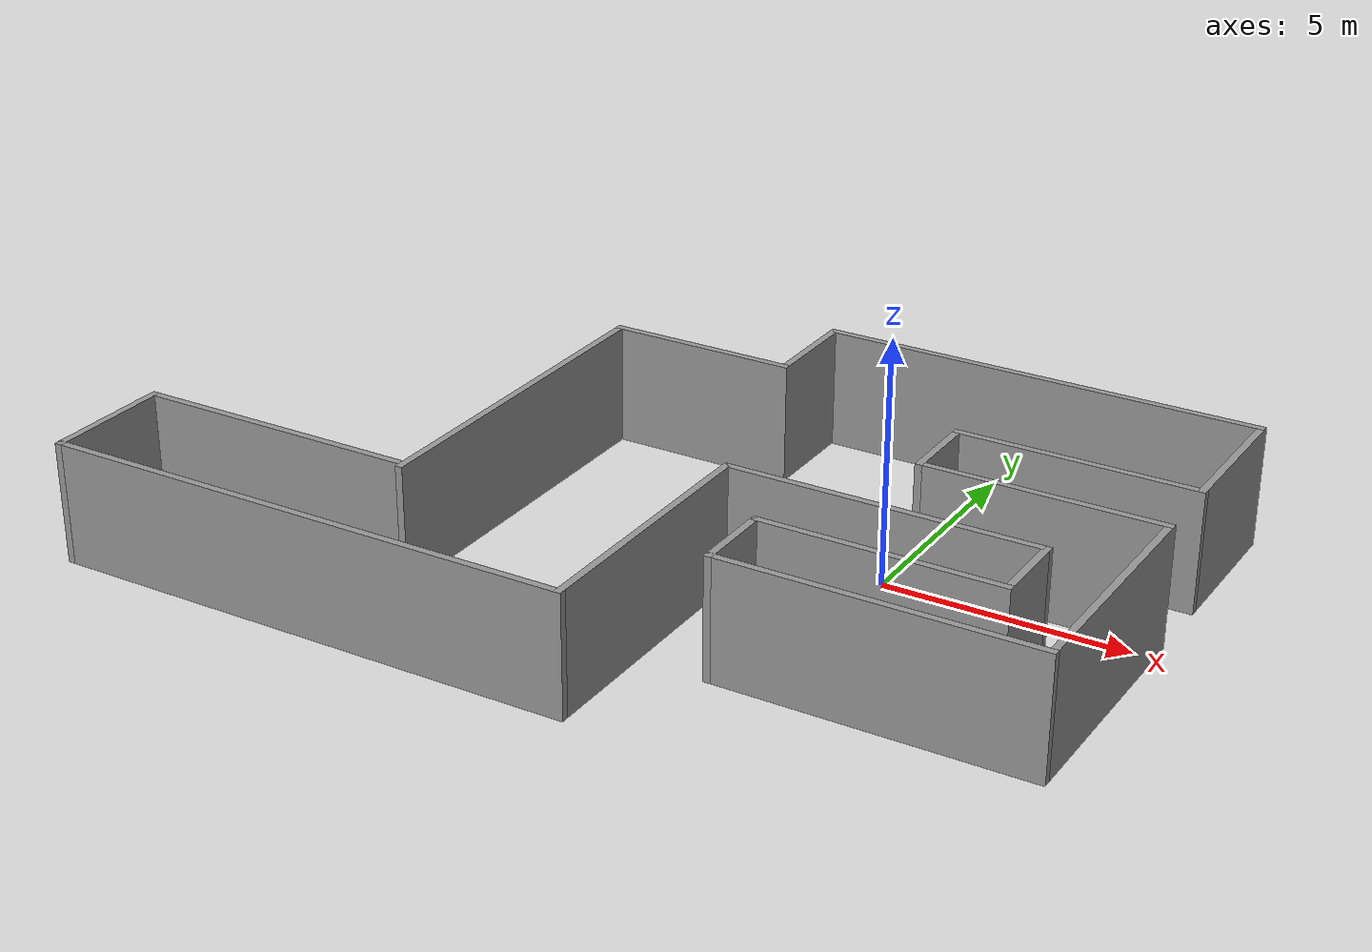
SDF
<?xml version='1.0'?>
<sdf version='1.7'>
  <model name='room_1'>
    <pose>-4.14546 -1.03137 0 0 -0 0</pose>
    <link name='Wall_10'>
      <collision name='Wall_10_Collision'>
        <geometry>
          <box>
            <size>5 0.15 2.5</size>
          </box>
        </geometry>
        <pose>0 0 1.25 0 -0 0</pose>
      </collision>
      <visual name='Wall_10_Visual'>
        <pose>0 0 1.25 0 -0 0</pose>
        <geometry>
          <box>
            <size>5 0.15 2.5</size>
          </box>
        </geometry>
        <material>
          <script>
            <uri>file://media/materials/scripts/gazebo.material</uri>
            <name>Gazebo/Grey</name>
          </script>
          <ambient>1 1 1 1</ambient>
        </material>
        <meta>
          <layer>0</layer>
        </meta>
      </visual>
      <pose>7.05 1.4 0 0 -0 0</pose>
    </link>
    <link name='Wall_11'>
      <collision name='Wall_11_Collision'>
        <geometry>
          <box>
            <size>5.25 0.15 2.5</size>
          </box>
        </geometry>
        <pose>0 0 1.25 0 -0 0</pose>
      </collision>
      <visual name='Wall_11_Visual'>
        <pose>0 0 1.25 0 -0 0</pose>
        <geometry>
          <box>
            <size>5.25 0.15 2.5</size>
          </box>
        </geometry>
        <material>
          <script>
            <uri>file://media/materials/scripts/gazebo.material</uri>
            <name>Gazebo/Grey</name>
          </script>
          <ambient>1 1 1 1</ambient>
        </material>
        <meta>
          <layer>0</layer>
        </meta>
      </visual>
      <pose>9.475 -1.15 0 0 -0 -1.5708</pose>
    </link>
    <link name='Wall_12'>
      <collision name='Wall_12_Collision'>
        <geometry>
          <box>
            <size>6.5 0.15 2.5</size>
          </box>
        </geometry>
        <pose>0 0 1.25 0 -0 0</pose>
      </collision>
      <visual name='Wall_12_Visual'>
        <pose>0 0 1.25 0 -0 0</pose>
        <geometry>
          <box>
            <size>6.5 0.15 2.5</size>
          </box>
        </geometry>
        <material>
          <script>
            <uri>file://media/materials/scripts/gazebo.material</uri>
            <name>Gazebo/Grey</name>
          </script>
          <ambient>1 1 1 1</ambient>
        </material>
        <meta>
          <layer>0</layer>
        </meta>
      </visual>
      <pose>6.3 -3.7 0 0 -0 3.14159</pose>
    </link>
    <link name='Wall_13'>
      <collision name='Wall_13_Collision'>
        <geometry>
          <box>
            <size>1.75 0.15 2.5</size>
          </box>
        </geometry>
        <pose>0 0 1.25 0 -0 0</pose>
      </collision>
      <visual name='Wall_13_Visual'>
        <pose>0 0 1.25 0 -0 0</pose>
        <geometry>
          <box>
            <size>1.75 0.15 2.5</size>
          </box>
        </geometry>
        <material>
          <script>
            <uri>file://media/materials/scripts/gazebo.material</uri>
            <name>Gazebo/Grey</name>
          </script>
          <ambient>1 1 1 1</ambient>
        </material>
        <meta>
          <layer>0</layer>
        </meta>
      </visual>
      <pose>3.125 -2.9 0 0 -0 1.5708</pose>
    </link>
    <link name='Wall_14'>
      <collision name='Wall_14_Collision'>
        <geometry>
          <box>
            <size>5 0.15 2.5</size>
          </box>
        </geometry>
        <pose>0 0 1.25 0 -0 0</pose>
      </collision>
      <visual name='Wall_14_Visual'>
        <pose>0 0 1.25 0 -0 0</pose>
        <geometry>
          <box>
            <size>5 0.15 2.5</size>
          </box>
        </geometry>
        <material>
          <script>
            <uri>file://media/materials/scripts/gazebo.material</uri>
            <name>Gazebo/Grey</name>
          </script>
          <ambient>1 1 1 1</ambient>
        </material>
        <meta>
          <layer>0</layer>
        </meta>
      </visual>
      <pose>5.55 -2.1 0 0 -0 0</pose>
    </link>
    <link name='Wall_15'>
      <collision name='Wall_15_Collision'>
        <geometry>
          <box>
            <size>1.75 0.15 2.5</size>
          </box>
        </geometry>
        <pose>0 0 1.25 0 -0 0</pose>
      </collision>
      <visual name='Wall_15_Visual'>
        <pose>0 0 1.25 0 -0 0</pose>
        <geometry>
          <box>
            <size>1.75 0.15 2.5</size>
          </box>
        </geometry>
        <material>
          <script>
            <uri>file://media/materials/scripts/gazebo.material</uri>
            <name>Gazebo/Grey</name>
          </script>
          <ambient>1 1 1 1</ambient>
        </material>
        <meta>
          <layer>0</layer>
        </meta>
      </visual>
      <pose>7.975 -1.3 0 0 -0 1.5708</pose>
    </link>
    <link name='Wall_16'>
      <collision name='Wall_16_Collision'>
        <geometry>
          <box>
            <size>6.5 0.15 2.5</size>
          </box>
        </geometry>
        <pose>0 0 1.25 0 -0 0</pose>
      </collision>
      <visual name='Wall_16_Visual'>
        <pose>0 0 1.25 0 -0 0</pose>
        <geometry>
          <box>
            <size>6.5 0.15 2.5</size>
          </box>
        </geometry>
        <material>
          <script>
            <uri>file://media/materials/scripts/gazebo.material</uri>
            <name>Gazebo/Grey</name>
          </script>
          <ambient>1 1 1 1</ambient>
        </material>
        <meta>
          <layer>0</layer>
        </meta>
      </visual>
      <pose>4.8 -0.5 0 0 -0 3.14159</pose>
    </link>
    <link name='Wall_17'>
      <collision name='Wall_17_Collision'>
        <geometry>
          <box>
            <size>5.75 0.15 2.5</size>
          </box>
        </geometry>
        <pose>0 0 1.25 0 -0 0</pose>
      </collision>
      <visual name='Wall_17_Visual'>
        <pose>0 0 1.25 0 -0 0</pose>
        <geometry>
          <box>
            <size>5.75 0.15 2.5</size>
          </box>
        </geometry>
        <material>
          <script>
            <uri>file://media/materials/scripts/gazebo.material</uri>
            <name>Gazebo/Grey</name>
          </script>
          <ambient>1 1 1 1</ambient>
        </material>
        <meta>
          <layer>0</layer>
        </meta>
      </visual>
      <pose>1.625 -3.3 0 0 -0 -1.5708</pose>
    </link>
    <link name='Wall_18'>
      <collision name='Wall_18_Collision'>
        <geometry>
          <box>
            <size>11.25 0.15 2.5</size>
          </box>
        </geometry>
        <pose>0 0 1.25 0 -0 0</pose>
      </collision>
      <visual name='Wall_18_Visual'>
        <pose>0 0 1.25 0 -0 0</pose>
        <geometry>
          <box>
            <size>11.25 0.15 2.5</size>
          </box>
        </geometry>
        <material>
          <script>
            <uri>file://media/materials/scripts/gazebo.material</uri>
            <name>Gazebo/Grey</name>
          </script>
          <ambient>1 1 1 1</ambient>
        </material>
        <meta>
          <layer>0</layer>
        </meta>
      </visual>
      <pose>-3.925 -6.1 0 0 -0 3.14159</pose>
    </link>
    <link name='Wall_19'>
      <collision name='Wall_19_Collision'>
        <geometry>
          <box>
            <size>2.75 0.15 2.5</size>
          </box>
        </geometry>
        <pose>0 0 1.25 0 -0 0</pose>
      </collision>
      <visual name='Wall_19_Visual'>
        <pose>0 0 1.25 0 -0 0</pose>
        <geometry>
          <box>
            <size>2.75 0.15 2.5</size>
          </box>
        </geometry>
        <material>
          <script>
            <uri>file://media/materials/scripts/gazebo.material</uri>
            <name>Gazebo/Grey</name>
          </script>
          <ambient>1 1 1 1</ambient>
        </material>
        <meta>
          <layer>0</layer>
        </meta>
      </visual>
      <pose>-9.475 -4.8 0 0 -0 1.5708</pose>
    </link>
    <link name='Wall_20'>
      <collision name='Wall_20_Collision'>
        <geometry>
          <box>
            <size>6 0.15 2.5</size>
          </box>
        </geometry>
        <pose>0 0 1.25 0 -0 0</pose>
      </collision>
      <visual name='Wall_20_Visual'>
        <pose>0 0 1.25 0 -0 0</pose>
        <geometry>
          <box>
            <size>6 0.15 2.5</size>
          </box>
        </geometry>
        <material>
          <script>
            <uri>file://media/materials/scripts/gazebo.material</uri>
            <name>Gazebo/Grey</name>
          </script>
          <ambient>1 1 1 1</ambient>
        </material>
        <meta>
          <layer>0</layer>
        </meta>
      </visual>
      <pose>-6.55 -3.5 0 0 -0 0</pose>
    </link>
    <link name='Wall_3'>
      <collision name='Wall_3_Collision'>
        <geometry>
          <box>
            <size>7.75 0.15 2.5</size>
          </box>
        </geometry>
        <pose>0 0 1.25 0 -0 0</pose>
      </collision>
      <visual name='Wall_3_Visual'>
        <pose>0 0 1.25 0 -0 0</pose>
        <geometry>
          <box>
            <size>7.75 0.15 2.5</size>
          </box>
        </geometry>
        <material>
          <script>
            <uri>file://media/materials/scripts/gazebo.material</uri>
            <name>Gazebo/Grey</name>
          </script>
          <ambient>1 1 1 1</ambient>
        </material>
        <meta>
          <layer>0</layer>
        </meta>
      </visual>
      <pose>-3.475 0.2 0 0 -0 1.5708</pose>
    </link>
    <link name='Wall_4'>
      <collision name='Wall_4_Collision'>
        <geometry>
          <box>
            <size>4 0.15 2.5</size>
          </box>
        </geometry>
        <pose>0 0 1.25 0 -0 0</pose>
      </collision>
      <visual name='Wall_4_Visual'>
        <pose>0 0 1.25 0 -0 0</pose>
        <geometry>
          <box>
            <size>4 0.15 2.5</size>
          </box>
        </geometry>
        <material>
          <script>
            <uri>file://media/materials/scripts/gazebo.material</uri>
            <name>Gazebo/Grey</name>
          </script>
          <ambient>1 1 1 1</ambient>
        </material>
        <meta>
          <layer>0</layer>
        </meta>
      </visual>
      <pose>-1.55 4 0 0 -0 0</pose>
    </link>
    <link name='Wall_5'>
      <collision name='Wall_5_Collision'>
        <geometry>
          <box>
            <size>2.25 0.15 2.5</size>
          </box>
        </geometry>
        <pose>0 0 1.25 0 -0 0</pose>
      </collision>
      <visual name='Wall_5_Visual'>
        <pose>0 0 1.25 0 -0 0</pose>
        <geometry>
          <box>
            <size>2.25 0.15 2.5</size>
          </box>
        </geometry>
        <material>
          <script>
            <uri>file://media/materials/scripts/gazebo.material</uri>
            <name>Gazebo/Grey</name>
          </script>
          <ambient>1 1 1 1</ambient>
        </material>
        <meta>
          <layer>0</layer>
        </meta>
      </visual>
      <pose>0.375 5.05 0 0 -0 1.5708</pose>
    </link>
    <link name='Wall_6'>
      <collision name='Wall_6_Collision'>
        <geometry>
          <box>
            <size>9.25 0.15 2.5</size>
          </box>
        </geometry>
        <pose>0 0 1.25 0 -0 0</pose>
      </collision>
      <visual name='Wall_6_Visual'>
        <pose>0 0 1.25 0 -0 0</pose>
        <geometry>
          <box>
            <size>9.25 0.15 2.5</size>
          </box>
        </geometry>
        <material>
          <script>
            <uri>file://media/materials/scripts/gazebo.material</uri>
            <name>Gazebo/Grey</name>
          </script>
          <ambient>1 1 1 1</ambient>
        </material>
        <meta>
          <layer>0</layer>
        </meta>
      </visual>
      <pose>4.925 6.1 0 0 -0 0</pose>
    </link>
    <link name='Wall_7'>
      <collision name='Wall_7_Collision'>
        <geometry>
          <box>
            <size>3.25 0.15 2.5</size>
          </box>
        </geometry>
        <pose>0 0 1.25 0 -0 0</pose>
      </collision>
      <visual name='Wall_7_Visual'>
        <pose>0 0 1.25 0 -0 0</pose>
        <geometry>
          <box>
            <size>3.25 0.15 2.5</size>
          </box>
        </geometry>
        <material>
          <script>
            <uri>file://media/materials/scripts/gazebo.material</uri>
            <name>Gazebo/Grey</name>
          </script>
          <ambient>1 1 1 1</ambient>
        </material>
        <meta>
          <layer>0</layer>
        </meta>
      </visual>
      <pose>9.475 4.55 0 0 -0 -1.5708</pose>
    </link>
    <link name='Wall_8'>
      <collision name='Wall_8_Collision'>
        <geometry>
          <box>
            <size>5 0.15 2.5</size>
          </box>
        </geometry>
        <pose>0 0 1.25 0 -0 0</pose>
      </collision>
      <visual name='Wall_8_Visual'>
        <pose>0 0 1.25 0 -0 0</pose>
        <geometry>
          <box>
            <size>5 0.15 2.5</size>
          </box>
        </geometry>
        <material>
          <script>
            <uri>file://media/materials/scripts/gazebo.material</uri>
            <name>Gazebo/Grey</name>
          </script>
          <ambient>1 1 1 1</ambient>
        </material>
        <meta>
          <layer>0</layer>
        </meta>
      </visual>
      <pose>7.05 3 0 0 -0 3.14159</pose>
    </link>
    <link name='Wall_9'>
      <collision name='Wall_9_Collision'>
        <geometry>
          <box>
            <size>1.75 0.15 2.5</size>
          </box>
        </geometry>
        <pose>0 0 1.25 0 -0 0</pose>
      </collision>
      <visual name='Wall_9_Visual'>
        <pose>0 0 1.25 0 -0 0</pose>
        <geometry>
          <box>
            <size>1.75 0.15 2.5</size>
          </box>
        </geometry>
        <material>
          <script>
            <uri>file://media/materials/scripts/gazebo.material</uri>
            <name>Gazebo/Grey</name>
          </script>
          <ambient>1 1 1 1</ambient>
        </material>
        <meta>
          <layer>0</layer>
        </meta>
      </visual>
      <pose>4.625 2.2 0 0 -0 -1.5708</pose>
    </link>
    <static>1</static>
  </model>
</sdf>
